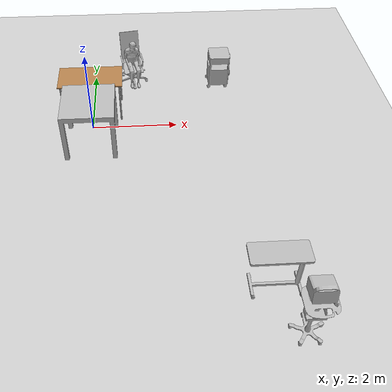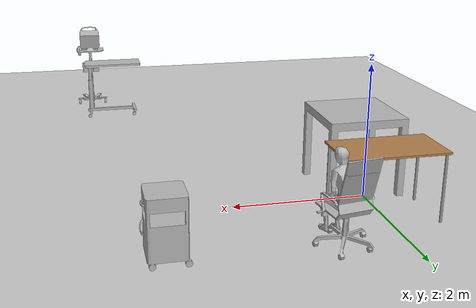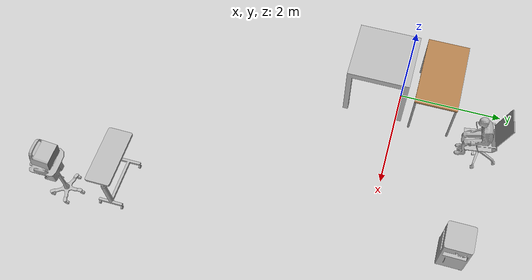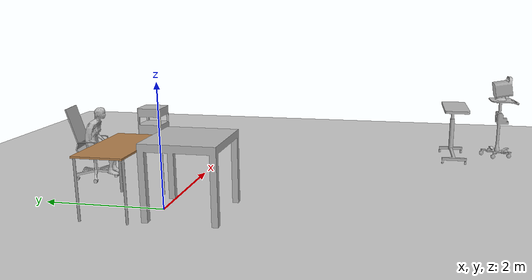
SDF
<sdf version="1.6">
 <world name="default">
  <light name="sun" type="directional">
   <pose>0 0 10 0 -0 0</pose>
   <diffuse>0.8 0.8 0.8 1</diffuse>
   <specular>0.2 0.2 0.2 1</specular>
   <attenuation>
    <range>1000</range>
    <constant>0.9</constant>
    <linear>0.01</linear>
    <quadratic>0.001</quadratic>
   </attenuation>
   <direction>-0.5 0.1 -0.9</direction>
  </light>
  <model name="ground_plane">
   <static>1</static>
   <link name="link">
    <collision name="collision">
     <geometry><plane><normal>0 0 1</normal><size>100 100</size></plane></geometry>
     <surface><friction><ode><mu>100</mu><mu2>50</mu2></ode></friction></surface>
    </collision>
    <visual name="visual">
     <cast_shadows>0</cast_shadows>
     <geometry><plane><normal>0 0 1</normal><size>100 100</size></plane></geometry>
     <material>
      <script><uri>file://media/materials/scripts/gazebo.material</uri><name>Gazebo/Grey</name></script>
     </material>
    </visual>
   </link>
  </model>
  <gravity>0 0 -9.8</gravity>
  <magnetic_field>6e-06 2.3e-05 -4.2e-05</magnetic_field>
  <atmosphere type="adiabatic"/>
  <physics name="default_physics" default="0" type="ode">
   <max_step_size>0.001</max_step_size>
   <real_time_factor>1</real_time_factor>
   <real_time_update_rate>1000</real_time_update_rate>
  </physics>
  <scene><ambient>0.4 0.4 0.4 1</ambient><background>0.7 0.7 0.7 1</background><shadows>1</shadows></scene>
  <audio><device>default</device></audio>
  <spherical_coordinates>
   <surface_model>EARTH_WGS84</surface_model>
   <latitude_deg>0</latitude_deg>
   <longitude_deg>0</longitude_deg>
   <elevation>0</elevation>
   <heading_deg>0</heading_deg>
  </spherical_coordinates>
  <model name="nist_elevated_floor_120">
   <static>1</static>
   <link name="nist_elevated_floor_120">
    <collision name="collision">
     <geometry>
      <mesh><uri>model://nist_elevated_floor_120/meshes/nist_elevated_floor_120.dae</uri><scale>1 1 1</scale></mesh>
     </geometry>
    </collision>
    <visual name="visual">
     <geometry>
      <mesh><uri>model://nist_elevated_floor_120/meshes/nist_elevated_floor_120.dae</uri><scale>1 1 1</scale></mesh>
     </geometry>
    </visual>
   </link>
   <pose>0.005735 -0.482404 0 0 -0 0</pose>
  </model>
  <model name="table">
   <static>1</static>
   <link name="link">
    <collision name="surface">
     <pose>0 0 1 0 -0 0</pose>
     <geometry><box><size>1.5 0.8 0.03</size></box></geometry>
     <surface><friction><ode><mu>0.6</mu><mu2>0.6</mu2></ode></friction></surface>
    </collision>
    <visual name="visual1">
     <pose>0 0 1 0 -0 0</pose>
     <geometry><box><size>1.5 0.8 0.03</size></box></geometry>
     <material>
      <script><uri>file://media/materials/scripts/gazebo.material</uri><name>Gazebo/Wood</name></script>
     </material>
    </visual>
    <collision name="front_left_leg">
     <pose>0.68 0.38 0.5 0 -0 0</pose>
     <geometry><cylinder><radius>0.02</radius><length>1</length></cylinder></geometry>
    </collision>
    <visual name="front_left_leg">
     <pose>0.68 0.38 0.5 0 -0 0</pose>
     <geometry><cylinder><radius>0.02</radius><length>1</length></cylinder></geometry>
     <material>
      <script><uri>file://media/materials/scripts/gazebo.material</uri><name>Gazebo/Grey</name></script>
     </material>
    </visual>
    <collision name="front_right_leg">
     <pose>0.68 -0.38 0.5 0 -0 0</pose>
     <geometry><cylinder><radius>0.02</radius><length>1</length></cylinder></geometry>
    </collision>
    <visual name="front_right_leg">
     <pose>0.68 -0.38 0.5 0 -0 0</pose>
     <geometry><cylinder><radius>0.02</radius><length>1</length></cylinder></geometry>
     <material>
      <script><uri>file://media/materials/scripts/gazebo.material</uri><name>Gazebo/Grey</name></script>
     </material>
    </visual>
    <collision name="back_right_leg">
     <pose>-0.68 -0.38 0.5 0 -0 0</pose>
     <geometry><cylinder><radius>0.02</radius><length>1</length></cylinder></geometry>
    </collision>
    <visual name="back_right_leg">
     <pose>-0.68 -0.38 0.5 0 -0 0</pose>
     <geometry><cylinder><radius>0.02</radius><length>1</length></cylinder></geometry>
     <material>
      <script><uri>file://media/materials/scripts/gazebo.material</uri><name>Gazebo/Grey</name></script>
     </material>
    </visual>
    <collision name="back_left_leg">
     <pose>-0.68 0.38 0.5 0 -0 0</pose>
     <geometry><cylinder><radius>0.02</radius><length>1</length></cylinder></geometry>
    </collision>
    <visual name="back_left_leg">
     <pose>-0.68 0.38 0.5 0 -0 0</pose>
     <geometry><cylinder><radius>0.02</radius><length>1</length></cylinder></geometry>
     <material>
      <script><uri>file://media/materials/scripts/gazebo.material</uri><name>Gazebo/Grey</name></script>
     </material>
    </visual>
   </link>
   <pose>1.8e-05 0.659275 0 0 -0 0</pose>
  </model>
  <model name="BPCart">
   <link name="body">
    <visual name="visual"><geometry><mesh><uri>model://BPCart/meshes/Cart_BP.obj</uri></mesh></geometry></visual>
    <collision name="collision">
     <geometry><mesh><uri>model://BPCart/meshes/Cart_BP_Col.obj</uri></mesh></geometry>
    </collision>
    <inertial>
     <inertia><ixx>1</ixx><ixy>0</ixy><ixz>0</ixz><iyy>1</iyy><iyz>0</iyz><izz>1</izz></inertia>
     <mass>1</mass>
    </inertial>
   </link>
   <pose>3.80706 -5.62256 0.120379 0 -0 0</pose>
  </model>
  <model name="BedsideTable">
   <link name="body">
    <pose>0 0 0 0 0 -1.5708</pose>
    <visual name="visual">
     <geometry><mesh><uri>model://BedsideTable/meshes/BedsideTable.obj</uri></mesh></geometry>
    </visual>
    <collision name="collision">
     <geometry><mesh><uri>model://BedsideTable/meshes/BedsideTable_Col.obj</uri></mesh></geometry>
    </collision>
    <inertial>
     <inertia><ixx>1</ixx><ixy>0</ixy><ixz>0</ixz><iyy>1</iyy><iyz>0</iyz><izz>1</izz></inertia>
     <mass>1</mass>
    </inertial>
   </link>
   <pose>3.15413 1.49423 0.117113 2e-06 -0 0</pose>
  </model>
  <model name="BedTable">
   <link name="body">
    <visual name="visual">
     <geometry><mesh><uri>model://BedTable/meshes/BedTable.obj</uri></mesh></geometry>
    </visual>
    <collision name="collision">
     <geometry><mesh><uri>model://BedTable/meshes/BedTable_Col.obj</uri></mesh></geometry>
    </collision>
    <inertial>
     <inertia><ixx>1</ixx><ixy>0</ixy><ixz>0</ixz><iyy>1</iyy><iyz>0</iyz><izz>1</izz></inertia>
     <mass>1</mass>
    </inertial>
   </link>
   <pose>3.48412 -4.64835 0.118122 0 -0 0</pose>
  </model>
  <model name="OfficeChairBlack">
   <static>1</static>
   <link name="body">
    <visual name="visual">
     <geometry><mesh><uri>model://OfficeChairBlack/meshes/OfficeChairBlack.obj</uri></mesh></geometry>
    </visual>
    <collision name="collision">
     <geometry><mesh><uri>model://OfficeChairBlack/meshes/OfficeChairBlack_Col.obj</uri></mesh></geometry>
    </collision>
   </link>
   <pose>0.9741 1.64856 0.148471 0 -0 0.156658</pose>
  </model>
  <model name="PatientFSit">
   <static>1</static>
   <link name="body">
    <visual name="visual">
     <geometry><mesh><uri>model://PatientFSit/meshes/PatientFSit.obj</uri></mesh></geometry>
    </visual>
    <collision name="collision">
     <geometry><mesh><uri>model://PatientFSit/meshes/PatientFSit_Col.obj</uri></mesh></geometry>
    </collision>
   </link>
   <pose>0.974013 1.67098 0.215192 0 0 -1.34901</pose>
  </model>
 </world>
</sdf>
